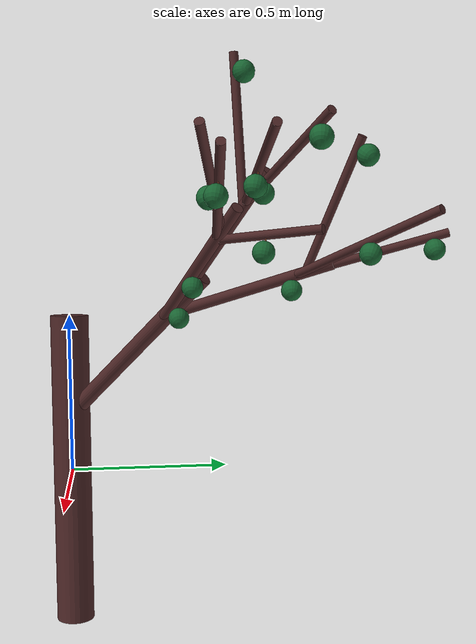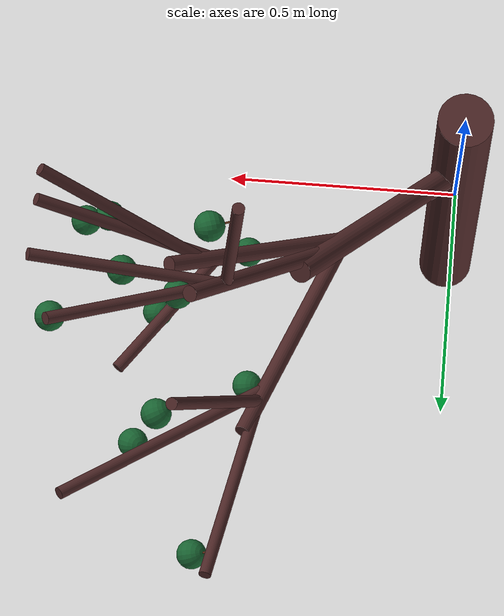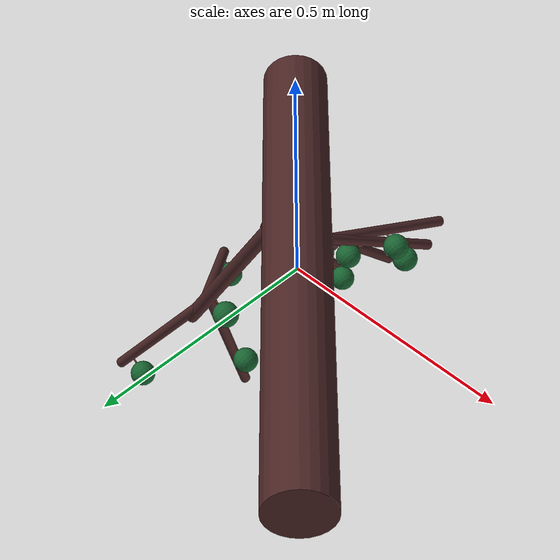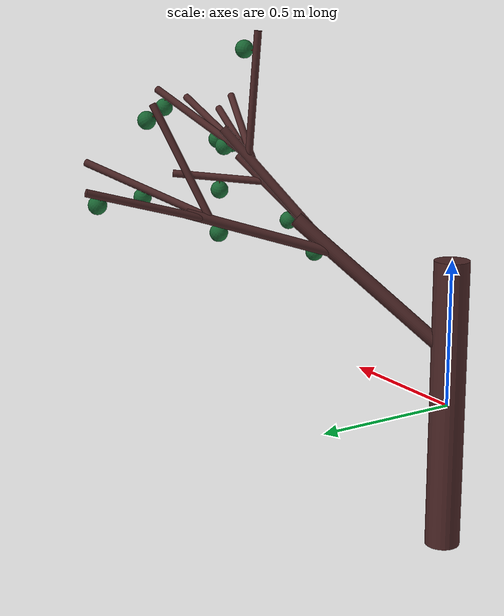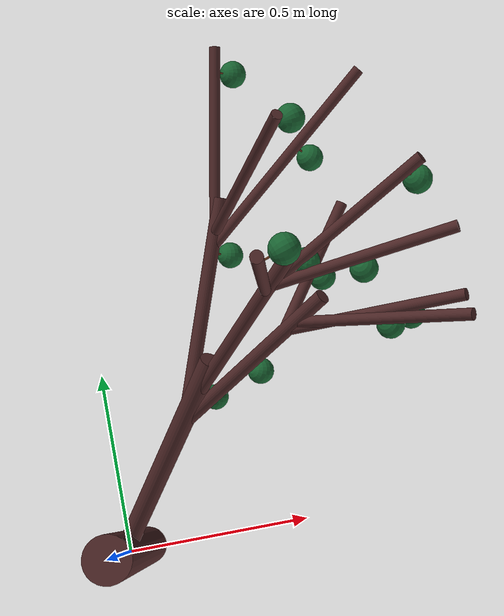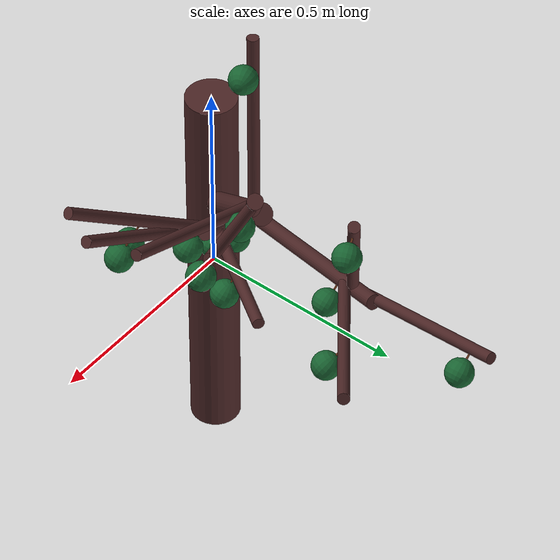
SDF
<sdf version="1.7">
  <model name="tree">
    <link name="branch_a">
      <visual name="visual">
        <geometry>
          <cylinder>
            <radius>0.06</radius>
            <length>1</length>
          </cylinder>
        </geometry>
        <material>
          <ambient>0.3 0.15 0.15 1</ambient>
          <diffuse>0.3 0.15 0.15 1</diffuse>
          <specular>0.0 0.0 0.0 1</specular>
          <emissive>0 0 0 1</emissive>
        </material>
      </visual>
      <collision name="collision">
        <geometry>
          <cylinder>
            <radius>0.06</radius>
            <length>1</length>
          </cylinder>
        </geometry>
      </collision>
    </link>
    <link name="branch_aa">
      <pose relative_to="joint2_a_couple_aa">0 0 0.3333333333333333 0 0 0</pose>
      <visual name="visual">
        <geometry>
          <cylinder>
            <radius>0.025</radius>
            <length>0.6666666666666666</length>
          </cylinder>
        </geometry>
        <material>
          <ambient>0.3 0.15 0.15 1</ambient>
          <diffuse>0.3 0.15 0.15 1</diffuse>
          <specular>0.0 0.0 0.0 1</specular>
          <emissive>0 0 0 1</emissive>
        </material>
      </visual>
      <collision name="collision">
        <geometry>
          <cylinder>
            <radius>0.025</radius>
            <length>0.39999999999999997</length>
          </cylinder>
        </geometry>
      </collision>
    </link>
    <joint name="joint1_a_couple_aa" type="revolute">
      <pose relative_to="branch_a">0 0 0.18301479073633892 -0.6283185307179586 0.6283185307179586 0</pose>
      <parent>branch_a</parent>
      <child>couple_a_aa</child>
      <axis>
        <xyz>1 0 0 </xyz>
        <dynamics>
          <damping>100</damping>
          <friction>0</friction>
          <spring_reference>0</spring_reference>
          <spring_stiffness>2000</spring_stiffness>
        </dynamics>
        <limit>
          <effort>0</effort>
        </limit>
      </axis>
    </joint>
    <joint name="joint2_a_couple_aa" type="revolute">
      <pose relative_to="couple_a_aa">0 0 0.01 0 0 0</pose>
      <parent>couple_a_aa</parent>
      <child>branch_aa</child>
      <axis>
        <xyz>0 1 0 </xyz>
        <dynamics>
          <damping>100</damping>
          <friction>0</friction>
          <spring_reference>0</spring_reference>
          <spring_stiffness>2000</spring_stiffness>
        </dynamics>
        <limit>
          <effort>0</effort>
        </limit>
      </axis>
    </joint>
    <link name="couple_a_aa">
      <pose relative_to="joint1_a_couple_aa">0 0 0 0 0 0</pose>
    </link>
    <link name="apple_aa">
      <pose relative_to="joint_aa_apple">0 0 0 0 0 0</pose>
      <visual name="apple">
        <pose>0 0 0.04 0 0 0</pose>
        <geometry>
          <sphere>
            <radius>0.03</radius>
          </sphere>
        </geometry>
        <material>
          <ambient>0.1 0.5 0.2 1</ambient>
          <diffuse>0.1 0.4 0.2 1</diffuse>
          <specular>0.2 0.4 0.1 1</specular>
          <emissive>0 0 0 1</emissive>
        </material>
      </visual>
      <visual name="stalk">
        <pose>0 0 0.005 0 0 0</pose>
        <geometry>
          <cylinder>
            <radius>0.002</radius>
            <length>0.01</length>
          </cylinder>
        </geometry>
        <material>
          <ambient>0.4 0.2 0.1 1</ambient>
          <diffuse>0.4 0.2 0.1 1</diffuse>
          <specular>0.2 0.1 0.1 1</specular>
          <emissive>0 0 0 1</emissive>
        </material>
      </visual>
      <inertial>
        <pose>0 0 0.04 0 0 0</pose>
        <mass>0.1</mass>
        <inertia>
          <ixx>0.0005</ixx>
          <ixy>0</ixy>
          <ixz>0</ixz>
          <iyy>0.0005</iyy>
          <iyz>0</iyz>
          <izz>0.0005</izz>
        </inertia>
      </inertial>
      <collision name="collision">
        <pose>0 0 0.04 0 0 0</pose>
        <geometry>
          <sphere>
            <radius>0.03</radius>
          </sphere>
        </geometry>
      </collision>
    </link>
    <joint name="joint_aa_apple" type="universal">
      <pose relative_to="branch_aa">0.025 0 0.212748841202469 0 1.5707963267948966 0</pose>
      <parent>branch_aa</parent>
      <child>apple_aa</child>
      <axis>
        <xyz>0 1 0 </xyz>
        <dynamics>
          <damping>0.001</damping>
          <friction>0</friction>
          <spring_reference>0</spring_reference>
          <spring_stiffness>0.2</spring_stiffness>
        </dynamics>
        <limit>
          <effort>0</effort>
        </limit>
      </axis>
      <axis2>
        <xyz>1 0 0 </xyz>
        <dynamics>
          <damping>0.001</damping>
          <friction>0</friction>
          <spring_reference>0</spring_reference>
          <spring_stiffness>0.2</spring_stiffness>
        </dynamics>
        <limit>
          <effort>0</effort>
        </limit>
      </axis2>
    </joint>
    <link name="branch_aaa">
      <pose relative_to="joint2_aa_couple_aaa">0 0 0.25 0 0 0</pose>
      <visual name="visual">
        <geometry>
          <cylinder>
            <radius>0.016666666666666666</radius>
            <length>0.5</length>
          </cylinder>
        </geometry>
        <material>
          <ambient>0.3 0.15 0.15 1</ambient>
          <diffuse>0.3 0.15 0.15 1</diffuse>
          <specular>0.0 0.0 0.0 1</specular>
          <emissive>0 0 0 1</emissive>
        </material>
      </visual>
      <collision name="collision">
        <geometry>
          <cylinder>
            <radius>0.016666666666666666</radius>
            <length>0.3</length>
          </cylinder>
        </geometry>
      </collision>
    </link>
    <joint name="joint1_aa_couple_aaa" type="revolute">
      <pose relative_to="branch_aa">0 0 0.16433340811892602 -0.4899838116195375 0.10801555146457278 0</pose>
      <parent>branch_aa</parent>
      <child>couple_aa_aaa</child>
      <axis>
        <xyz>1 0 0 </xyz>
        <dynamics>
          <damping>5</damping>
          <friction>0</friction>
          <spring_reference>0</spring_reference>
          <spring_stiffness>300</spring_stiffness>
        </dynamics>
        <limit>
          <effort>0</effort>
        </limit>
      </axis>
    </joint>
    <joint name="joint2_aa_couple_aaa" type="revolute">
      <pose relative_to="couple_aa_aaa">0 0 0.01 0 0 0</pose>
      <parent>couple_aa_aaa</parent>
      <child>branch_aaa</child>
      <axis>
        <xyz>0 1 0 </xyz>
        <dynamics>
          <damping>5</damping>
          <friction>0</friction>
          <spring_reference>0</spring_reference>
          <spring_stiffness>300</spring_stiffness>
        </dynamics>
        <limit>
          <effort>0</effort>
        </limit>
      </axis>
    </joint>
    <link name="couple_aa_aaa">
      <pose relative_to="joint1_aa_couple_aaa">0 0 0 0 0 0</pose>
    </link>
    <link name="apple_aaa">
      <pose relative_to="joint_aaa_apple">0 0 0 0 0 0</pose>
      <visual name="apple">
        <pose>0 0 0.04 0 0 0</pose>
        <geometry>
          <sphere>
            <radius>0.03</radius>
          </sphere>
        </geometry>
        <material>
          <ambient>0.1 0.5 0.2 1</ambient>
          <diffuse>0.1 0.4 0.2 1</diffuse>
          <specular>0.2 0.4 0.1 1</specular>
          <emissive>0 0 0 1</emissive>
        </material>
      </visual>
      <visual name="stalk">
        <pose>0 0 0.005 0 0 0</pose>
        <geometry>
          <cylinder>
            <radius>0.002</radius>
            <length>0.01</length>
          </cylinder>
        </geometry>
        <material>
          <ambient>0.4 0.2 0.1 1</ambient>
          <diffuse>0.4 0.2 0.1 1</diffuse>
          <specular>0.2 0.1 0.1 1</specular>
          <emissive>0 0 0 1</emissive>
        </material>
      </visual>
      <inertial>
        <pose>0 0 0.04 0 0 0</pose>
        <mass>0.1</mass>
        <inertia>
          <ixx>0.0005</ixx>
          <ixy>0</ixy>
          <ixz>0</ixz>
          <iyy>0.0005</iyy>
          <iyz>0</iyz>
          <izz>0.0005</izz>
        </inertia>
      </inertial>
      <collision name="collision">
        <pose>0 0 0.04 0 0 0</pose>
        <geometry>
          <sphere>
            <radius>0.03</radius>
          </sphere>
        </geometry>
      </collision>
    </link>
    <joint name="joint_aaa_apple" type="universal">
      <pose relative_to="branch_aaa">0.016666666666666666 0 0.12254281269703801 0 1.5707963267948966 0</pose>
      <parent>branch_aaa</parent>
      <child>apple_aaa</child>
      <axis>
        <xyz>0 1 0 </xyz>
        <dynamics>
          <damping>0.001</damping>
          <friction>0</friction>
          <spring_reference>0</spring_reference>
          <spring_stiffness>0.2</spring_stiffness>
        </dynamics>
        <limit>
          <effort>0</effort>
        </limit>
      </axis>
      <axis2>
        <xyz>1 0 0 </xyz>
        <dynamics>
          <damping>0.001</damping>
          <friction>0</friction>
          <spring_reference>0</spring_reference>
          <spring_stiffness>0.2</spring_stiffness>
        </dynamics>
        <limit>
          <effort>0</effort>
        </limit>
      </axis2>
    </joint>
    <link name="branch_aaaa">
      <pose relative_to="joint2_aaa_couple_aaaa">0 0 0.25 0 0 0</pose>
      <visual name="visual">
        <geometry>
          <cylinder>
            <radius>0.0125</radius>
            <length>0.5</length>
          </cylinder>
        </geometry>
        <material>
          <ambient>0.3 0.15 0.15 1</ambient>
          <diffuse>0.3 0.15 0.15 1</diffuse>
          <specular>0.0 0.0 0.0 1</specular>
          <emissive>0 0 0 1</emissive>
        </material>
      </visual>
      <collision name="collision">
        <geometry>
          <cylinder>
            <radius>0.0125</radius>
            <length>0.3</length>
          </cylinder>
        </geometry>
      </collision>
    </link>
    <joint name="joint1_aaa_couple_aaaa" type="revolute">
      <pose relative_to="branch_aaa">0 0 0.13521068283479198 0.419500359050168 0.3504337913076952 0</pose>
      <parent>branch_aaa</parent>
      <child>couple_aaa_aaaa</child>
      <axis>
        <xyz>1 0 0 </xyz>
        <dynamics>
          <damping>3</damping>
          <friction>0</friction>
          <spring_reference>0</spring_reference>
          <spring_stiffness>10</spring_stiffness>
        </dynamics>
        <limit>
          <effort>0</effort>
        </limit>
      </axis>
    </joint>
    <joint name="joint2_aaa_couple_aaaa" type="revolute">
      <pose relative_to="couple_aaa_aaaa">0 0 0.01 0 0 0</pose>
      <parent>couple_aaa_aaaa</parent>
      <child>branch_aaaa</child>
      <axis>
        <xyz>0 1 0 </xyz>
        <dynamics>
          <damping>3</damping>
          <friction>0</friction>
          <spring_reference>0</spring_reference>
          <spring_stiffness>10</spring_stiffness>
        </dynamics>
        <limit>
          <effort>0</effort>
        </limit>
      </axis>
    </joint>
    <link name="couple_aaa_aaaa">
      <pose relative_to="joint1_aaa_couple_aaaa">0 0 0 0 0 0</pose>
    </link>
    <link name="apple_aaaa">
      <pose relative_to="joint_aaaa_apple">0 0 0 0 0 0</pose>
      <visual name="apple">
        <pose>0 0 0.04 0 0 0</pose>
        <geometry>
          <sphere>
            <radius>0.03</radius>
          </sphere>
        </geometry>
        <material>
          <ambient>0.1 0.5 0.2 1</ambient>
          <diffuse>0.1 0.4 0.2 1</diffuse>
          <specular>0.2 0.4 0.1 1</specular>
          <emissive>0 0 0 1</emissive>
        </material>
      </visual>
      <visual name="stalk">
        <pose>0 0 0.005 0 0 0</pose>
        <geometry>
          <cylinder>
            <radius>0.002</radius>
            <length>0.01</length>
          </cylinder>
        </geometry>
        <material>
          <ambient>0.4 0.2 0.1 1</ambient>
          <diffuse>0.4 0.2 0.1 1</diffuse>
          <specular>0.2 0.1 0.1 1</specular>
          <emissive>0 0 0 1</emissive>
        </material>
      </visual>
      <inertial>
        <pose>0 0 0.04 0 0 0</pose>
        <mass>0.1</mass>
        <inertia>
          <ixx>0.0005</ixx>
          <ixy>0</ixy>
          <ixz>0</ixz>
          <iyy>0.0005</iyy>
          <iyz>0</iyz>
          <izz>0.0005</izz>
        </inertia>
      </inertial>
      <collision name="collision">
        <pose>0 0 0.04 0 0 0</pose>
        <geometry>
          <sphere>
            <radius>0.03</radius>
          </sphere>
        </geometry>
      </collision>
    </link>
    <joint name="joint_aaaa_apple" type="universal">
      <pose relative_to="branch_aaaa">0.0125 0 0.036016398252860835 0 1.5707963267948966 0</pose>
      <parent>branch_aaaa</parent>
      <child>apple_aaaa</child>
      <axis>
        <xyz>0 1 0 </xyz>
        <dynamics>
          <damping>0.001</damping>
          <friction>0</friction>
          <spring_reference>0</spring_reference>
          <spring_stiffness>0.2</spring_stiffness>
        </dynamics>
        <limit>
          <effort>0</effort>
        </limit>
      </axis>
      <axis2>
        <xyz>1 0 0 </xyz>
        <dynamics>
          <damping>0.001</damping>
          <friction>0</friction>
          <spring_reference>0</spring_reference>
          <spring_stiffness>0.2</spring_stiffness>
        </dynamics>
        <limit>
          <effort>0</effort>
        </limit>
      </axis2>
    </joint>
    <link name="branch_aaab">
      <pose relative_to="joint2_aaa_couple_aaab">0 0 0.2 0 0 0</pose>
      <visual name="visual">
        <geometry>
          <cylinder>
            <radius>0.0125</radius>
            <length>0.4</length>
          </cylinder>
        </geometry>
        <material>
          <ambient>0.3 0.15 0.15 1</ambient>
          <diffuse>0.3 0.15 0.15 1</diffuse>
          <specular>0.0 0.0 0.0 1</specular>
          <emissive>0 0 0 1</emissive>
        </material>
      </visual>
      <collision name="collision">
        <geometry>
          <cylinder>
            <radius>0.0125</radius>
            <length>0.2</length>
          </cylinder>
        </geometry>
      </collision>
    </link>
    <joint name="joint1_aaa_couple_aaab" type="revolute">
      <pose relative_to="branch_aaa">0 0 0.16816484967076595 0.7821854667239717 -0.4399609793928951 0</pose>
      <parent>branch_aaa</parent>
      <child>couple_aaa_aaab</child>
      <axis>
        <xyz>1 0 0 </xyz>
        <dynamics>
          <damping>3</damping>
          <friction>0</friction>
          <spring_reference>0</spring_reference>
          <spring_stiffness>10</spring_stiffness>
        </dynamics>
        <limit>
          <effort>0</effort>
        </limit>
      </axis>
    </joint>
    <joint name="joint2_aaa_couple_aaab" type="revolute">
      <pose relative_to="couple_aaa_aaab">0 0 0.01 0 0 0</pose>
      <parent>couple_aaa_aaab</parent>
      <child>branch_aaab</child>
      <axis>
        <xyz>0 1 0 </xyz>
        <dynamics>
          <damping>3</damping>
          <friction>0</friction>
          <spring_reference>0</spring_reference>
          <spring_stiffness>10</spring_stiffness>
        </dynamics>
        <limit>
          <effort>0</effort>
        </limit>
      </axis>
    </joint>
    <link name="couple_aaa_aaab">
      <pose relative_to="joint1_aaa_couple_aaab">0 0 0 0 0 0</pose>
    </link>
    <link name="apple_aaab">
      <pose relative_to="joint_aaab_apple">0 0 0 0 0 0</pose>
      <visual name="apple">
        <pose>0 0 0.04 0 0 0</pose>
        <geometry>
          <sphere>
            <radius>0.03</radius>
          </sphere>
        </geometry>
        <material>
          <ambient>0.1 0.5 0.2 1</ambient>
          <diffuse>0.1 0.4 0.2 1</diffuse>
          <specular>0.2 0.4 0.1 1</specular>
          <emissive>0 0 0 1</emissive>
        </material>
      </visual>
      <visual name="stalk">
        <pose>0 0 0.005 0 0 0</pose>
        <geometry>
          <cylinder>
            <radius>0.002</radius>
            <length>0.01</length>
          </cylinder>
        </geometry>
        <material>
          <ambient>0.4 0.2 0.1 1</ambient>
          <diffuse>0.4 0.2 0.1 1</diffuse>
          <specular>0.2 0.1 0.1 1</specular>
          <emissive>0 0 0 1</emissive>
        </material>
      </visual>
      <inertial>
        <pose>0 0 0.04 0 0 0</pose>
        <mass>0.1</mass>
        <inertia>
          <ixx>0.0005</ixx>
          <ixy>0</ixy>
          <ixz>0</ixz>
          <iyy>0.0005</iyy>
          <iyz>0</iyz>
          <izz>0.0005</izz>
        </inertia>
      </inertial>
      <collision name="collision">
        <pose>0 0 0.04 0 0 0</pose>
        <geometry>
          <sphere>
            <radius>0.03</radius>
          </sphere>
        </geometry>
      </collision>
    </link>
    <joint name="joint_aaab_apple" type="universal">
      <pose relative_to="branch_aaab">0.0125 0 0.16690747382412058 0 1.5707963267948966 0</pose>
      <parent>branch_aaab</parent>
      <child>apple_aaab</child>
      <axis>
        <xyz>0 1 0 </xyz>
        <dynamics>
          <damping>0.001</damping>
          <friction>0</friction>
          <spring_reference>0</spring_reference>
          <spring_stiffness>0.2</spring_stiffness>
        </dynamics>
        <limit>
          <effort>0</effort>
        </limit>
      </axis>
      <axis2>
        <xyz>1 0 0 </xyz>
        <dynamics>
          <damping>0.001</damping>
          <friction>0</friction>
          <spring_reference>0</spring_reference>
          <spring_stiffness>0.2</spring_stiffness>
        </dynamics>
        <limit>
          <effort>0</effort>
        </limit>
      </axis2>
    </joint>
    <link name="branch_aaac">
      <pose relative_to="joint2_aaa_couple_aaac">0 0 0.2 0 0 0</pose>
      <visual name="visual">
        <geometry>
          <cylinder>
            <radius>0.0125</radius>
            <length>0.4</length>
          </cylinder>
        </geometry>
        <material>
          <ambient>0.3 0.15 0.15 1</ambient>
          <diffuse>0.3 0.15 0.15 1</diffuse>
          <specular>0.0 0.0 0.0 1</specular>
          <emissive>0 0 0 1</emissive>
        </material>
      </visual>
      <collision name="collision">
        <geometry>
          <cylinder>
            <radius>0.0125</radius>
            <length>0.3</length>
          </cylinder>
        </geometry>
      </collision>
    </link>
    <joint name="joint1_aaa_couple_aaac" type="revolute">
      <pose relative_to="branch_aaa">0 0 0.17249040111407737 -0.1268807067691326 -0.1 0</pose>
      <parent>branch_aaa</parent>
      <child>couple_aaa_aaac</child>
      <axis>
        <xyz>1 0 0 </xyz>
        <dynamics>
          <damping>3</damping>
          <friction>0</friction>
          <spring_reference>0</spring_reference>
          <spring_stiffness>10</spring_stiffness>
        </dynamics>
        <limit>
          <effort>0</effort>
        </limit>
      </axis>
    </joint>
    <joint name="joint2_aaa_couple_aaac" type="revolute">
      <pose relative_to="couple_aaa_aaac">0 0 0.01 0 0 0</pose>
      <parent>couple_aaa_aaac</parent>
      <child>branch_aaac</child>
      <axis>
        <xyz>0 1 0 </xyz>
        <dynamics>
          <damping>3</damping>
          <friction>0</friction>
          <spring_reference>0</spring_reference>
          <spring_stiffness>10</spring_stiffness>
        </dynamics>
        <limit>
          <effort>0</effort>
        </limit>
      </axis>
    </joint>
    <link name="couple_aaa_aaac">
      <pose relative_to="joint1_aaa_couple_aaac">0 0 0 0 0 0</pose>
    </link>
    <link name="apple_aaac">
      <pose relative_to="joint_aaac_apple">0 0 0 0 0 0</pose>
      <visual name="apple">
        <pose>0 0 0.04 0 0 0</pose>
        <geometry>
          <sphere>
            <radius>0.03</radius>
          </sphere>
        </geometry>
        <material>
          <ambient>0.1 0.5 0.2 1</ambient>
          <diffuse>0.1 0.4 0.2 1</diffuse>
          <specular>0.2 0.4 0.1 1</specular>
          <emissive>0 0 0 1</emissive>
        </material>
      </visual>
      <visual name="stalk">
        <pose>0 0 0.005 0 0 0</pose>
        <geometry>
          <cylinder>
            <radius>0.002</radius>
            <length>0.01</length>
          </cylinder>
        </geometry>
        <material>
          <ambient>0.4 0.2 0.1 1</ambient>
          <diffuse>0.4 0.2 0.1 1</diffuse>
          <specular>0.2 0.1 0.1 1</specular>
          <emissive>0 0 0 1</emissive>
        </material>
      </visual>
      <inertial>
        <pose>0 0 0.04 0 0 0</pose>
        <mass>0.1</mass>
        <inertia>
          <ixx>0.0005</ixx>
          <ixy>0</ixy>
          <ixz>0</ixz>
          <iyy>0.0005</iyy>
          <iyz>0</iyz>
          <izz>0.0005</izz>
        </inertia>
      </inertial>
      <collision name="collision">
        <pose>0 0 0.04 0 0 0</pose>
        <geometry>
          <sphere>
            <radius>0.03</radius>
          </sphere>
        </geometry>
      </collision>
    </link>
    <joint name="joint_aaac_apple" type="universal">
      <pose relative_to="branch_aaac">0.0125 0 0.14495352435353565 0 1.5707963267948966 0</pose>
      <parent>branch_aaac</parent>
      <child>apple_aaac</child>
      <axis>
        <xyz>0 1 0 </xyz>
        <dynamics>
          <damping>0.001</damping>
          <friction>0</friction>
          <spring_reference>0</spring_reference>
          <spring_stiffness>0.2</spring_stiffness>
        </dynamics>
        <limit>
          <effort>0</effort>
        </limit>
      </axis>
      <axis2>
        <xyz>1 0 0 </xyz>
        <dynamics>
          <damping>0.001</damping>
          <friction>0</friction>
          <spring_reference>0</spring_reference>
          <spring_stiffness>0.2</spring_stiffness>
        </dynamics>
        <limit>
          <effort>0</effort>
        </limit>
      </axis2>
    </joint>
    <link name="branch_aab">
      <pose relative_to="joint2_aa_couple_aab">0 0 0.25 0 0 0</pose>
      <visual name="visual">
        <geometry>
          <cylinder>
            <radius>0.016666666666666666</radius>
            <length>0.5</length>
          </cylinder>
        </geometry>
        <material>
          <ambient>0.3 0.15 0.15 1</ambient>
          <diffuse>0.3 0.15 0.15 1</diffuse>
          <specular>0.0 0.0 0.0 1</specular>
          <emissive>0 0 0 1</emissive>
        </material>
      </visual>
      <collision name="collision">
        <geometry>
          <cylinder>
            <radius>0.016666666666666666</radius>
            <length>0.3</length>
          </cylinder>
        </geometry>
      </collision>
    </link>
    <joint name="joint1_aa_couple_aab" type="revolute">
      <pose relative_to="branch_aa">0 0 0.20304237275630543 0.16575992458130107 0.0033906171172045693 0</pose>
      <parent>branch_aa</parent>
      <child>couple_aa_aab</child>
      <axis>
        <xyz>1 0 0 </xyz>
        <dynamics>
          <damping>5</damping>
          <friction>0</friction>
          <spring_reference>0</spring_reference>
          <spring_stiffness>300</spring_stiffness>
        </dynamics>
        <limit>
          <effort>0</effort>
        </limit>
      </axis>
    </joint>
    <joint name="joint2_aa_couple_aab" type="revolute">
      <pose relative_to="couple_aa_aab">0 0 0.01 0 0 0</pose>
      <parent>couple_aa_aab</parent>
      <child>branch_aab</child>
      <axis>
        <xyz>0 1 0 </xyz>
        <dynamics>
          <damping>5</damping>
          <friction>0</friction>
          <spring_reference>0</spring_reference>
          <spring_stiffness>300</spring_stiffness>
        </dynamics>
        <limit>
          <effort>0</effort>
        </limit>
      </axis>
    </joint>
    <link name="couple_aa_aab">
      <pose relative_to="joint1_aa_couple_aab">0 0 0 0 0 0</pose>
    </link>
    <link name="apple_aab">
      <pose relative_to="joint_aab_apple">0 0 0 0 0 0</pose>
      <visual name="apple">
        <pose>0 0 0.04 0 0 0</pose>
        <geometry>
          <sphere>
            <radius>0.03</radius>
          </sphere>
        </geometry>
        <material>
          <ambient>0.1 0.5 0.2 1</ambient>
          <diffuse>0.1 0.4 0.2 1</diffuse>
          <specular>0.2 0.4 0.1 1</specular>
          <emissive>0 0 0 1</emissive>
        </material>
      </visual>
      <visual name="stalk">
        <pose>0 0 0.005 0 0 0</pose>
        <geometry>
          <cylinder>
            <radius>0.002</radius>
            <length>0.01</length>
          </cylinder>
        </geometry>
        <material>
          <ambient>0.4 0.2 0.1 1</ambient>
          <diffuse>0.4 0.2 0.1 1</diffuse>
          <specular>0.2 0.1 0.1 1</specular>
          <emissive>0 0 0 1</emissive>
        </material>
      </visual>
      <inertial>
        <pose>0 0 0.04 0 0 0</pose>
        <mass>0.1</mass>
        <inertia>
          <ixx>0.0005</ixx>
          <ixy>0</ixy>
          <ixz>0</ixz>
          <iyy>0.0005</iyy>
          <iyz>0</iyz>
          <izz>0.0005</izz>
        </inertia>
      </inertial>
      <collision name="collision">
        <pose>0 0 0.04 0 0 0</pose>
        <geometry>
          <sphere>
            <radius>0.03</radius>
          </sphere>
        </geometry>
      </collision>
    </link>
    <joint name="joint_aab_apple" type="universal">
      <pose relative_to="branch_aab">0.016666666666666666 0 0.21277964647426612 0 1.5707963267948966 0</pose>
      <parent>branch_aab</parent>
      <child>apple_aab</child>
      <axis>
        <xyz>0 1 0 </xyz>
        <dynamics>
          <damping>0.001</damping>
          <friction>0</friction>
          <spring_reference>0</spring_reference>
          <spring_stiffness>0.2</spring_stiffness>
        </dynamics>
        <limit>
          <effort>0</effort>
        </limit>
      </axis>
      <axis2>
        <xyz>1 0 0 </xyz>
        <dynamics>
          <damping>0.001</damping>
          <friction>0</friction>
          <spring_reference>0</spring_reference>
          <spring_stiffness>0.2</spring_stiffness>
        </dynamics>
        <limit>
          <effort>0</effort>
        </limit>
      </axis2>
    </joint>
    <link name="branch_aaba">
      <pose relative_to="joint2_aab_couple_aaba">0 0 0.2 0 0 0</pose>
      <visual name="visual">
        <geometry>
          <cylinder>
            <radius>0.0125</radius>
            <length>0.4</length>
          </cylinder>
        </geometry>
        <material>
          <ambient>0.3 0.15 0.15 1</ambient>
          <diffuse>0.3 0.15 0.15 1</diffuse>
          <specular>0.0 0.0 0.0 1</specular>
          <emissive>0 0 0 1</emissive>
        </material>
      </visual>
      <collision name="collision">
        <geometry>
          <cylinder>
            <radius>0.0125</radius>
            <length>0.3</length>
          </cylinder>
        </geometry>
      </collision>
    </link>
    <joint name="joint1_aab_couple_aaba" type="revolute">
      <pose relative_to="branch_aab">0 0 0.12392427473199831 0.40389501572116354 -0.7677171338531678 0</pose>
      <parent>branch_aab</parent>
      <child>couple_aab_aaba</child>
      <axis>
        <xyz>1 0 0 </xyz>
        <dynamics>
          <damping>3</damping>
          <friction>0</friction>
          <spring_reference>0</spring_reference>
          <spring_stiffness>10</spring_stiffness>
        </dynamics>
        <limit>
          <effort>0</effort>
        </limit>
      </axis>
    </joint>
    <joint name="joint2_aab_couple_aaba" type="revolute">
      <pose relative_to="couple_aab_aaba">0 0 0.01 0 0 0</pose>
      <parent>couple_aab_aaba</parent>
      <child>branch_aaba</child>
      <axis>
        <xyz>0 1 0 </xyz>
        <dynamics>
          <damping>3</damping>
          <friction>0</friction>
          <spring_reference>0</spring_reference>
          <spring_stiffness>10</spring_stiffness>
        </dynamics>
        <limit>
          <effort>0</effort>
        </limit>
      </axis>
    </joint>
    <link name="couple_aab_aaba">
      <pose relative_to="joint1_aab_couple_aaba">0 0 0 0 0 0</pose>
    </link>
    <link name="apple_aaba">
      <pose relative_to="joint_aaba_apple">0 0 0 0 0 0</pose>
      <visual name="apple">
        <pose>0 0 0.04 0 0 0</pose>
        <geometry>
          <sphere>
            <radius>0.03</radius>
          </sphere>
        </geometry>
        <material>
          <ambient>0.1 0.5 0.2 1</ambient>
          <diffuse>0.1 0.4 0.2 1</diffuse>
          <specular>0.2 0.4 0.1 1</specular>
          <emissive>0 0 0 1</emissive>
        </material>
      </visual>
      <visual name="stalk">
        <pose>0 0 0.005 0 0 0</pose>
        <geometry>
          <cylinder>
            <radius>0.002</radius>
            <length>0.01</length>
          </cylinder>
        </geometry>
        <material>
          <ambient>0.4 0.2 0.1 1</ambient>
          <diffuse>0.4 0.2 0.1 1</diffuse>
          <specular>0.2 0.1 0.1 1</specular>
          <emissive>0 0 0 1</emissive>
        </material>
      </visual>
      <inertial>
        <pose>0 0 0.04 0 0 0</pose>
        <mass>0.1</mass>
        <inertia>
          <ixx>0.0005</ixx>
          <ixy>0</ixy>
          <ixz>0</ixz>
          <iyy>0.0005</iyy>
          <iyz>0</iyz>
          <izz>0.0005</izz>
        </inertia>
      </inertial>
      <collision name="collision">
        <pose>0 0 0.04 0 0 0</pose>
        <geometry>
          <sphere>
            <radius>0.03</radius>
          </sphere>
        </geometry>
      </collision>
    </link>
    <joint name="joint_aaba_apple" type="universal">
      <pose relative_to="branch_aaba">0.0125 0 0.13622940984882048 0 1.5707963267948966 0</pose>
      <parent>branch_aaba</parent>
      <child>apple_aaba</child>
      <axis>
        <xyz>0 1 0 </xyz>
        <dynamics>
          <damping>0.001</damping>
          <friction>0</friction>
          <spring_reference>0</spring_reference>
          <spring_stiffness>0.2</spring_stiffness>
        </dynamics>
        <limit>
          <effort>0</effort>
        </limit>
      </axis>
      <axis2>
        <xyz>1 0 0 </xyz>
        <dynamics>
          <damping>0.001</damping>
          <friction>0</friction>
          <spring_reference>0</spring_reference>
          <spring_stiffness>0.2</spring_stiffness>
        </dynamics>
        <limit>
          <effort>0</effort>
        </limit>
      </axis2>
    </joint>
    <link name="branch_aabb">
      <pose relative_to="joint2_aab_couple_aabb">0 0 0.2 0 0 0</pose>
      <visual name="visual">
        <geometry>
          <cylinder>
            <radius>0.0125</radius>
            <length>0.4</length>
          </cylinder>
        </geometry>
        <material>
          <ambient>0.3 0.15 0.15 1</ambient>
          <diffuse>0.3 0.15 0.15 1</diffuse>
          <specular>0.0 0.0 0.0 1</specular>
          <emissive>0 0 0 1</emissive>
        </material>
      </visual>
      <collision name="collision">
        <geometry>
          <cylinder>
            <radius>0.0125</radius>
            <length>0.3</length>
          </cylinder>
        </geometry>
      </collision>
    </link>
    <joint name="joint1_aab_couple_aabb" type="revolute">
      <pose relative_to="branch_aab">0 0 0.13769672722772214 0.35158840398008595 0.5773464865601176 0</pose>
      <parent>branch_aab</parent>
      <child>couple_aab_aabb</child>
      <axis>
        <xyz>1 0 0 </xyz>
        <dynamics>
          <damping>3</damping>
          <friction>0</friction>
          <spring_reference>0</spring_reference>
          <spring_stiffness>10</spring_stiffness>
        </dynamics>
        <limit>
          <effort>0</effort>
        </limit>
      </axis>
    </joint>
    <joint name="joint2_aab_couple_aabb" type="revolute">
      <pose relative_to="couple_aab_aabb">0 0 0.01 0 0 0</pose>
      <parent>couple_aab_aabb</parent>
      <child>branch_aabb</child>
      <axis>
        <xyz>0 1 0 </xyz>
        <dynamics>
          <damping>3</damping>
          <friction>0</friction>
          <spring_reference>0</spring_reference>
          <spring_stiffness>10</spring_stiffness>
        </dynamics>
        <limit>
          <effort>0</effort>
        </limit>
      </axis>
    </joint>
    <link name="couple_aab_aabb">
      <pose relative_to="joint1_aab_couple_aabb">0 0 0 0 0 0</pose>
    </link>
    <link name="apple_aabb">
      <pose relative_to="joint_aabb_apple">0 0 0 0 0 0</pose>
      <visual name="apple">
        <pose>0 0 0.04 0 0 0</pose>
        <geometry>
          <sphere>
            <radius>0.03</radius>
          </sphere>
        </geometry>
        <material>
          <ambient>0.1 0.5 0.2 1</ambient>
          <diffuse>0.1 0.4 0.2 1</diffuse>
          <specular>0.2 0.4 0.1 1</specular>
          <emissive>0 0 0 1</emissive>
        </material>
      </visual>
      <visual name="stalk">
        <pose>0 0 0.005 0 0 0</pose>
        <geometry>
          <cylinder>
            <radius>0.002</radius>
            <length>0.01</length>
          </cylinder>
        </geometry>
        <material>
          <ambient>0.4 0.2 0.1 1</ambient>
          <diffuse>0.4 0.2 0.1 1</diffuse>
          <specular>0.2 0.1 0.1 1</specular>
          <emissive>0 0 0 1</emissive>
        </material>
      </visual>
      <inertial>
        <pose>0 0 0.04 0 0 0</pose>
        <mass>0.1</mass>
        <inertia>
          <ixx>0.0005</ixx>
          <ixy>0</ixy>
          <ixz>0</ixz>
          <iyy>0.0005</iyy>
          <iyz>0</iyz>
          <izz>0.0005</izz>
        </inertia>
      </inertial>
      <collision name="collision">
        <pose>0 0 0.04 0 0 0</pose>
        <geometry>
          <sphere>
            <radius>0.03</radius>
          </sphere>
        </geometry>
      </collision>
    </link>
    <joint name="joint_aabb_apple" type="universal">
      <pose relative_to="branch_aabb">0.0125 0 -0.015071427145052108 0 1.5707963267948966 0</pose>
      <parent>branch_aabb</parent>
      <child>apple_aabb</child>
      <axis>
        <xyz>0 1 0 </xyz>
        <dynamics>
          <damping>0.001</damping>
          <friction>0</friction>
          <spring_reference>0</spring_reference>
          <spring_stiffness>0.2</spring_stiffness>
        </dynamics>
        <limit>
          <effort>0</effort>
        </limit>
      </axis>
      <axis2>
        <xyz>1 0 0 </xyz>
        <dynamics>
          <damping>0.001</damping>
          <friction>0</friction>
          <spring_reference>0</spring_reference>
          <spring_stiffness>0.2</spring_stiffness>
        </dynamics>
        <limit>
          <effort>0</effort>
        </limit>
      </axis2>
    </joint>
    <link name="branch_aabc">
      <pose relative_to="joint2_aab_couple_aabc">0 0 0.2 0 0 0</pose>
      <visual name="visual">
        <geometry>
          <cylinder>
            <radius>0.0125</radius>
            <length>0.4</length>
          </cylinder>
        </geometry>
        <material>
          <ambient>0.3 0.15 0.15 1</ambient>
          <diffuse>0.3 0.15 0.15 1</diffuse>
          <specular>0.0 0.0 0.0 1</specular>
          <emissive>0 0 0 1</emissive>
        </material>
      </visual>
      <collision name="collision">
        <geometry>
          <cylinder>
            <radius>0.0125</radius>
            <length>0.3</length>
          </cylinder>
        </geometry>
      </collision>
    </link>
    <joint name="joint1_aab_couple_aabc" type="revolute">
      <pose relative_to="branch_aab">0 0 0.14048005464313065 0.04247379804993981 0.3692761117755387 0</pose>
      <parent>branch_aab</parent>
      <child>couple_aab_aabc</child>
      <axis>
        <xyz>1 0 0 </xyz>
        <dynamics>
          <damping>3</damping>
          <friction>0</friction>
          <spring_reference>0</spring_reference>
          <spring_stiffness>10</spring_stiffness>
        </dynamics>
        <limit>
          <effort>0</effort>
        </limit>
      </axis>
    </joint>
    <joint name="joint2_aab_couple_aabc" type="revolute">
      <pose relative_to="couple_aab_aabc">0 0 0.01 0 0 0</pose>
      <parent>couple_aab_aabc</parent>
      <child>branch_aabc</child>
      <axis>
        <xyz>0 1 0 </xyz>
        <dynamics>
          <damping>3</damping>
          <friction>0</friction>
          <spring_reference>0</spring_reference>
          <spring_stiffness>10</spring_stiffness>
        </dynamics>
        <limit>
          <effort>0</effort>
        </limit>
      </axis>
    </joint>
    <link name="couple_aab_aabc">
      <pose relative_to="joint1_aab_couple_aabc">0 0 0 0 0 0</pose>
    </link>
    <link name="apple_aabc">
      <pose relative_to="joint_aabc_apple">0 0 0 0 0 0</pose>
      <visual name="apple">
        <pose>0 0 0.04 0 0 0</pose>
        <geometry>
          <sphere>
            <radius>0.03</radius>
          </sphere>
        </geometry>
        <material>
          <ambient>0.1 0.5 0.2 1</ambient>
          <diffuse>0.1 0.4 0.2 1</diffuse>
          <specular>0.2 0.4 0.1 1</specular>
          <emissive>0 0 0 1</emissive>
        </material>
      </visual>
      <visual name="stalk">
        <pose>0 0 0.005 0 0 0</pose>
        <geometry>
          <cylinder>
            <radius>0.002</radius>
            <length>0.01</length>
          </cylinder>
        </geometry>
        <material>
          <ambient>0.4 0.2 0.1 1</ambient>
          <diffuse>0.4 0.2 0.1 1</diffuse>
          <specular>0.2 0.1 0.1 1</specular>
          <emissive>0 0 0 1</emissive>
        </material>
      </visual>
      <inertial>
        <pose>0 0 0.04 0 0 0</pose>
        <mass>0.1</mass>
        <inertia>
          <ixx>0.0005</ixx>
          <ixy>0</ixy>
          <ixz>0</ixz>
          <iyy>0.0005</iyy>
          <iyz>0</iyz>
          <izz>0.0005</izz>
        </inertia>
      </inertial>
      <collision name="collision">
        <pose>0 0 0.04 0 0 0</pose>
        <geometry>
          <sphere>
            <radius>0.03</radius>
          </sphere>
        </geometry>
      </collision>
    </link>
    <joint name="joint_aabc_apple" type="universal">
      <pose relative_to="branch_aabc">0.0125 0 0.1590976315360511 0 1.5707963267948966 0</pose>
      <parent>branch_aabc</parent>
      <child>apple_aabc</child>
      <axis>
        <xyz>0 1 0 </xyz>
        <dynamics>
          <damping>0.001</damping>
          <friction>0</friction>
          <spring_reference>0</spring_reference>
          <spring_stiffness>0.2</spring_stiffness>
        </dynamics>
        <limit>
          <effort>0</effort>
        </limit>
      </axis>
      <axis2>
        <xyz>1 0 0 </xyz>
        <dynamics>
          <damping>0.001</damping>
          <friction>0</friction>
          <spring_reference>0</spring_reference>
          <spring_stiffness>0.2</spring_stiffness>
        </dynamics>
        <limit>
          <effort>0</effort>
        </limit>
      </axis2>
    </joint>
    <link name="branch_aac">
      <pose relative_to="joint2_aa_couple_aac">0 0 0.25 0 0 0</pose>
      <visual name="visual">
        <geometry>
          <cylinder>
            <radius>0.016666666666666666</radius>
            <length>0.5</length>
          </cylinder>
        </geometry>
        <material>
          <ambient>0.3 0.15 0.15 1</ambient>
          <diffuse>0.3 0.15 0.15 1</diffuse>
          <specular>0.0 0.0 0.0 1</specular>
          <emissive>0 0 0 1</emissive>
        </material>
      </visual>
      <collision name="collision">
        <geometry>
          <cylinder>
            <radius>0.016666666666666666</radius>
            <length>0.3</length>
          </cylinder>
        </geometry>
      </collision>
    </link>
    <joint name="joint1_aa_couple_aac" type="revolute">
      <pose relative_to="branch_aa">0 0 0.12946633776369332 0.24811186981012417 0.20501373385358923 0</pose>
      <parent>branch_aa</parent>
      <child>couple_aa_aac</child>
      <axis>
        <xyz>1 0 0 </xyz>
        <dynamics>
          <damping>5</damping>
          <friction>0</friction>
          <spring_reference>0</spring_reference>
          <spring_stiffness>300</spring_stiffness>
        </dynamics>
        <limit>
          <effort>0</effort>
        </limit>
      </axis>
    </joint>
    <joint name="joint2_aa_couple_aac" type="revolute">
      <pose relative_to="couple_aa_aac">0 0 0.01 0 0 0</pose>
      <parent>couple_aa_aac</parent>
      <child>branch_aac</child>
      <axis>
        <xyz>0 1 0 </xyz>
        <dynamics>
          <damping>5</damping>
          <friction>0</friction>
          <spring_reference>0</spring_reference>
          <spring_stiffness>300</spring_stiffness>
        </dynamics>
        <limit>
          <effort>0</effort>
        </limit>
      </axis>
    </joint>
    <link name="couple_aa_aac">
      <pose relative_to="joint1_aa_couple_aac">0 0 0 0 0 0</pose>
    </link>
    <link name="apple_aac">
      <pose relative_to="joint_aac_apple">0 0 0 0 0 0</pose>
      <visual name="apple">
        <pose>0 0 0.04 0 0 0</pose>
        <geometry>
          <sphere>
            <radius>0.03</radius>
          </sphere>
        </geometry>
        <material>
          <ambient>0.1 0.5 0.2 1</ambient>
          <diffuse>0.1 0.4 0.2 1</diffuse>
          <specular>0.2 0.4 0.1 1</specular>
          <emissive>0 0 0 1</emissive>
        </material>
      </visual>
      <visual name="stalk">
        <pose>0 0 0.005 0 0 0</pose>
        <geometry>
          <cylinder>
            <radius>0.002</radius>
            <length>0.01</length>
          </cylinder>
        </geometry>
        <material>
          <ambient>0.4 0.2 0.1 1</ambient>
          <diffuse>0.4 0.2 0.1 1</diffuse>
          <specular>0.2 0.1 0.1 1</specular>
          <emissive>0 0 0 1</emissive>
        </material>
      </visual>
      <inertial>
        <pose>0 0 0.04 0 0 0</pose>
        <mass>0.1</mass>
        <inertia>
          <ixx>0.0005</ixx>
          <ixy>0</ixy>
          <ixz>0</ixz>
          <iyy>0.0005</iyy>
          <iyz>0</iyz>
          <izz>0.0005</izz>
        </inertia>
      </inertial>
      <collision name="collision">
        <pose>0 0 0.04 0 0 0</pose>
        <geometry>
          <sphere>
            <radius>0.03</radius>
          </sphere>
        </geometry>
      </collision>
    </link>
    <joint name="joint_aac_apple" type="universal">
      <pose relative_to="branch_aac">0.016666666666666666 0 -0.021684852795888027 0 1.5707963267948966 0</pose>
      <parent>branch_aac</parent>
      <child>apple_aac</child>
      <axis>
        <xyz>0 1 0 </xyz>
        <dynamics>
          <damping>0.001</damping>
          <friction>0</friction>
          <spring_reference>0</spring_reference>
          <spring_stiffness>0.2</spring_stiffness>
        </dynamics>
        <limit>
          <effort>0</effort>
        </limit>
      </axis>
      <axis2>
        <xyz>1 0 0 </xyz>
        <dynamics>
          <damping>0.001</damping>
          <friction>0</friction>
          <spring_reference>0</spring_reference>
          <spring_stiffness>0.2</spring_stiffness>
        </dynamics>
        <limit>
          <effort>0</effort>
        </limit>
      </axis2>
    </joint>
    <link name="branch_aaca">
      <pose relative_to="joint2_aac_couple_aaca">0 0 0.2 0 0 0</pose>
      <visual name="visual">
        <geometry>
          <cylinder>
            <radius>0.0125</radius>
            <length>0.4</length>
          </cylinder>
        </geometry>
        <material>
          <ambient>0.3 0.15 0.15 1</ambient>
          <diffuse>0.3 0.15 0.15 1</diffuse>
          <specular>0.0 0.0 0.0 1</specular>
          <emissive>0 0 0 1</emissive>
        </material>
      </visual>
      <collision name="collision">
        <geometry>
          <cylinder>
            <radius>0.0125</radius>
            <length>0.3</length>
          </cylinder>
        </geometry>
      </collision>
    </link>
    <joint name="joint1_aac_couple_aaca" type="revolute">
      <pose relative_to="branch_aac">0 0 0.1269405724967505 0.4010163595943236 0.26636691351933406 0</pose>
      <parent>branch_aac</parent>
      <child>couple_aac_aaca</child>
      <axis>
        <xyz>1 0 0 </xyz>
        <dynamics>
          <damping>3</damping>
          <friction>0</friction>
          <spring_reference>0</spring_reference>
          <spring_stiffness>10</spring_stiffness>
        </dynamics>
        <limit>
          <effort>0</effort>
        </limit>
      </axis>
    </joint>
    <joint name="joint2_aac_couple_aaca" type="revolute">
      <pose relative_to="couple_aac_aaca">0 0 0.01 0 0 0</pose>
      <parent>couple_aac_aaca</parent>
      <child>branch_aaca</child>
      <axis>
        <xyz>0 1 0 </xyz>
        <dynamics>
          <damping>3</damping>
          <friction>0</friction>
          <spring_reference>0</spring_reference>
          <spring_stiffness>10</spring_stiffness>
        </dynamics>
        <limit>
          <effort>0</effort>
        </limit>
      </axis>
    </joint>
    <link name="couple_aac_aaca">
      <pose relative_to="joint1_aac_couple_aaca">0 0 0 0 0 0</pose>
    </link>
    <link name="apple_aaca">
      <pose relative_to="joint_aaca_apple">0 0 0 0 0 0</pose>
      <visual name="apple">
        <pose>0 0 0.04 0 0 0</pose>
        <geometry>
          <sphere>
            <radius>0.03</radius>
          </sphere>
        </geometry>
        <material>
          <ambient>0.1 0.5 0.2 1</ambient>
          <diffuse>0.1 0.4 0.2 1</diffuse>
          <specular>0.2 0.4 0.1 1</specular>
          <emissive>0 0 0 1</emissive>
        </material>
      </visual>
      <visual name="stalk">
        <pose>0 0 0.005 0 0 0</pose>
        <geometry>
          <cylinder>
            <radius>0.002</radius>
            <length>0.01</length>
          </cylinder>
        </geometry>
        <material>
          <ambient>0.4 0.2 0.1 1</ambient>
          <diffuse>0.4 0.2 0.1 1</diffuse>
          <specular>0.2 0.1 0.1 1</specular>
          <emissive>0 0 0 1</emissive>
        </material>
      </visual>
      <inertial>
        <pose>0 0 0.04 0 0 0</pose>
        <mass>0.1</mass>
        <inertia>
          <ixx>0.0005</ixx>
          <ixy>0</ixy>
          <ixz>0</ixz>
          <iyy>0.0005</iyy>
          <iyz>0</iyz>
          <izz>0.0005</izz>
        </inertia>
      </inertial>
      <collision name="collision">
        <pose>0 0 0.04 0 0 0</pose>
        <geometry>
          <sphere>
            <radius>0.03</radius>
          </sphere>
        </geometry>
      </collision>
    </link>
    <joint name="joint_aaca_apple" type="universal">
      <pose relative_to="branch_aaca">0.0125 0 0.06029882543556633 0 1.5707963267948966 0</pose>
      <parent>branch_aaca</parent>
      <child>apple_aaca</child>
      <axis>
        <xyz>0 1 0 </xyz>
        <dynamics>
          <damping>0.001</damping>
          <friction>0</friction>
          <spring_reference>0</spring_reference>
          <spring_stiffness>0.2</spring_stiffness>
        </dynamics>
        <limit>
          <effort>0</effort>
        </limit>
      </axis>
      <axis2>
        <xyz>1 0 0 </xyz>
        <dynamics>
          <damping>0.001</damping>
          <friction>0</friction>
          <spring_reference>0</spring_reference>
          <spring_stiffness>0.2</spring_stiffness>
        </dynamics>
        <limit>
          <effort>0</effort>
        </limit>
      </axis2>
    </joint>
    <link name="branch_aacb">
      <pose relative_to="joint2_aac_couple_aacb">0 0 0.15 0 0 0</pose>
      <visual name="visual">
        <geometry>
          <cylinder>
            <radius>0.0125</radius>
            <length>0.3</length>
          </cylinder>
        </geometry>
        <material>
          <ambient>0.3 0.15 0.15 1</ambient>
          <diffuse>0.3 0.15 0.15 1</diffuse>
          <specular>0.0 0.0 0.0 1</specular>
          <emissive>0 0 0 1</emissive>
        </material>
      </visual>
      <collision name="collision">
        <geometry>
          <cylinder>
            <radius>0.0125</radius>
            <length>0.3</length>
          </cylinder>
        </geometry>
      </collision>
    </link>
    <joint name="joint1_aac_couple_aacb" type="revolute">
      <pose relative_to="branch_aac">0 0 0.11966198733611438 -0.6739543706803992 0.3172275277652213 0</pose>
      <parent>branch_aac</parent>
      <child>couple_aac_aacb</child>
      <axis>
        <xyz>1 0 0 </xyz>
        <dynamics>
          <damping>3</damping>
          <friction>0</friction>
          <spring_reference>0</spring_reference>
          <spring_stiffness>10</spring_stiffness>
        </dynamics>
        <limit>
          <effort>0</effort>
        </limit>
      </axis>
    </joint>
    <joint name="joint2_aac_couple_aacb" type="revolute">
      <pose relative_to="couple_aac_aacb">0 0 0.01 0 0 0</pose>
      <parent>couple_aac_aacb</parent>
      <child>branch_aacb</child>
      <axis>
        <xyz>0 1 0 </xyz>
        <dynamics>
          <damping>3</damping>
          <friction>0</friction>
          <spring_reference>0</spring_reference>
          <spring_stiffness>10</spring_stiffness>
        </dynamics>
        <limit>
          <effort>0</effort>
        </limit>
      </axis>
    </joint>
    <link name="couple_aac_aacb">
      <pose relative_to="joint1_aac_couple_aacb">0 0 0 0 0 0</pose>
    </link>
    <link name="apple_aacb">
      <pose relative_to="joint_aacb_apple">0 0 0 0 0 0</pose>
      <visual name="apple">
        <pose>0 0 0.04 0 0 0</pose>
        <geometry>
          <sphere>
            <radius>0.03</radius>
          </sphere>
        </geometry>
        <material>
          <ambient>0.1 0.5 0.2 1</ambient>
          <diffuse>0.1 0.4 0.2 1</diffuse>
          <specular>0.2 0.4 0.1 1</specular>
          <emissive>0 0 0 1</emissive>
        </material>
      </visual>
      <visual name="stalk">
        <pose>0 0 0.005 0 0 0</pose>
        <geometry>
          <cylinder>
            <radius>0.002</radius>
            <length>0.01</length>
          </cylinder>
        </geometry>
        <material>
          <ambient>0.4 0.2 0.1 1</ambient>
          <diffuse>0.4 0.2 0.1 1</diffuse>
          <specular>0.2 0.1 0.1 1</specular>
          <emissive>0 0 0 1</emissive>
        </material>
      </visual>
      <inertial>
        <pose>0 0 0.04 0 0 0</pose>
        <mass>0.1</mass>
        <inertia>
          <ixx>0.0005</ixx>
          <ixy>0</ixy>
          <ixz>0</ixz>
          <iyy>0.0005</iyy>
          <iyz>0</iyz>
          <izz>0.0005</izz>
        </inertia>
      </inertial>
      <collision name="collision">
        <pose>0 0 0.04 0 0 0</pose>
        <geometry>
          <sphere>
            <radius>0.03</radius>
          </sphere>
        </geometry>
      </collision>
    </link>
    <joint name="joint_aacb_apple" type="universal">
      <pose relative_to="branch_aacb">0.0125 0 -0.007546705437092405 0 1.5707963267948966 0</pose>
      <parent>branch_aacb</parent>
      <child>apple_aacb</child>
      <axis>
        <xyz>0 1 0 </xyz>
        <dynamics>
          <damping>0.001</damping>
          <friction>0</friction>
          <spring_reference>0</spring_reference>
          <spring_stiffness>0.2</spring_stiffness>
        </dynamics>
        <limit>
          <effort>0</effort>
        </limit>
      </axis>
      <axis2>
        <xyz>1 0 0 </xyz>
        <dynamics>
          <damping>0.001</damping>
          <friction>0</friction>
          <spring_reference>0</spring_reference>
          <spring_stiffness>0.2</spring_stiffness>
        </dynamics>
        <limit>
          <effort>0</effort>
        </limit>
      </axis2>
    </joint>
    <link name="branch_aacc">
      <pose relative_to="joint2_aac_couple_aacc">0 0 0.2 0 0 0</pose>
      <visual name="visual">
        <geometry>
          <cylinder>
            <radius>0.0125</radius>
            <length>0.4</length>
          </cylinder>
        </geometry>
        <material>
          <ambient>0.3 0.15 0.15 1</ambient>
          <diffuse>0.3 0.15 0.15 1</diffuse>
          <specular>0.0 0.0 0.0 1</specular>
          <emissive>0 0 0 1</emissive>
        </material>
      </visual>
      <collision name="collision">
        <geometry>
          <cylinder>
            <radius>0.0125</radius>
            <length>0.3</length>
          </cylinder>
        </geometry>
      </collision>
    </link>
    <joint name="joint1_aac_couple_aacc" type="revolute">
      <pose relative_to="branch_aac">0 0 0.15650884701859846 0.5599294014654523 0.20360495515112895 0</pose>
      <parent>branch_aac</parent>
      <child>couple_aac_aacc</child>
      <axis>
        <xyz>1 0 0 </xyz>
        <dynamics>
          <damping>3</damping>
          <friction>0</friction>
          <spring_reference>0</spring_reference>
          <spring_stiffness>10</spring_stiffness>
        </dynamics>
        <limit>
          <effort>0</effort>
        </limit>
      </axis>
    </joint>
    <joint name="joint2_aac_couple_aacc" type="revolute">
      <pose relative_to="couple_aac_aacc">0 0 0.01 0 0 0</pose>
      <parent>couple_aac_aacc</parent>
      <child>branch_aacc</child>
      <axis>
        <xyz>0 1 0 </xyz>
        <dynamics>
          <damping>3</damping>
          <friction>0</friction>
          <spring_reference>0</spring_reference>
          <spring_stiffness>10</spring_stiffness>
        </dynamics>
        <limit>
          <effort>0</effort>
        </limit>
      </axis>
    </joint>
    <link name="couple_aac_aacc">
      <pose relative_to="joint1_aac_couple_aacc">0 0 0 0 0 0</pose>
    </link>
    <link name="apple_aacc">
      <pose relative_to="joint_aacc_apple">0 0 0 0 0 0</pose>
      <visual name="apple">
        <pose>0 0 0.04 0 0 0</pose>
        <geometry>
          <sphere>
            <radius>0.03</radius>
          </sphere>
        </geometry>
        <material>
          <ambient>0.1 0.5 0.2 1</ambient>
          <diffuse>0.1 0.4 0.2 1</diffuse>
          <specular>0.2 0.4 0.1 1</specular>
          <emissive>0 0 0 1</emissive>
        </material>
      </visual>
      <visual name="stalk">
        <pose>0 0 0.005 0 0 0</pose>
        <geometry>
          <cylinder>
            <radius>0.002</radius>
            <length>0.01</length>
          </cylinder>
        </geometry>
        <material>
          <ambient>0.4 0.2 0.1 1</ambient>
          <diffuse>0.4 0.2 0.1 1</diffuse>
          <specular>0.2 0.1 0.1 1</specular>
          <emissive>0 0 0 1</emissive>
        </material>
      </visual>
      <inertial>
        <pose>0 0 0.04 0 0 0</pose>
        <mass>0.1</mass>
        <inertia>
          <ixx>0.0005</ixx>
          <ixy>0</ixy>
          <ixz>0</ixz>
          <iyy>0.0005</iyy>
          <iyz>0</iyz>
          <izz>0.0005</izz>
        </inertia>
      </inertial>
      <collision name="collision">
        <pose>0 0 0.04 0 0 0</pose>
        <geometry>
          <sphere>
            <radius>0.03</radius>
          </sphere>
        </geometry>
      </collision>
    </link>
    <joint name="joint_aacc_apple" type="universal">
      <pose relative_to="branch_aacc">0.0125 0 -0.004876077911191393 0 1.5707963267948966 0</pose>
      <parent>branch_aacc</parent>
      <child>apple_aacc</child>
      <axis>
        <xyz>0 1 0 </xyz>
        <dynamics>
          <damping>0.001</damping>
          <friction>0</friction>
          <spring_reference>0</spring_reference>
          <spring_stiffness>0.2</spring_stiffness>
        </dynamics>
        <limit>
          <effort>0</effort>
        </limit>
      </axis>
      <axis2>
        <xyz>1 0 0 </xyz>
        <dynamics>
          <damping>0.001</damping>
          <friction>0</friction>
          <spring_reference>0</spring_reference>
          <spring_stiffness>0.2</spring_stiffness>
        </dynamics>
        <limit>
          <effort>0</effort>
        </limit>
      </axis2>
    </joint>
  </model>
</sdf>
